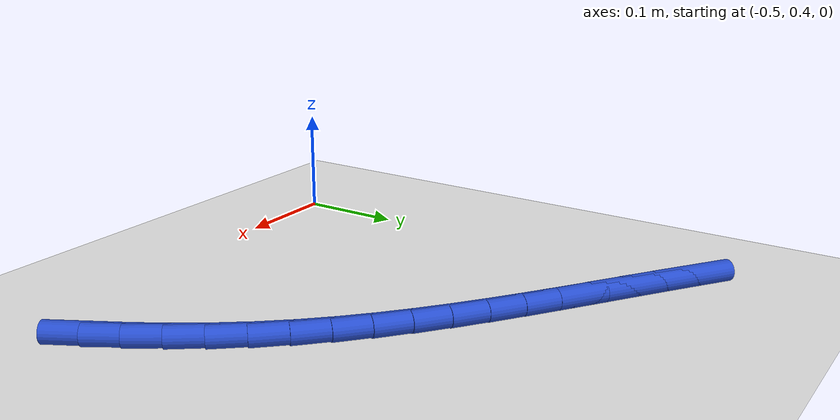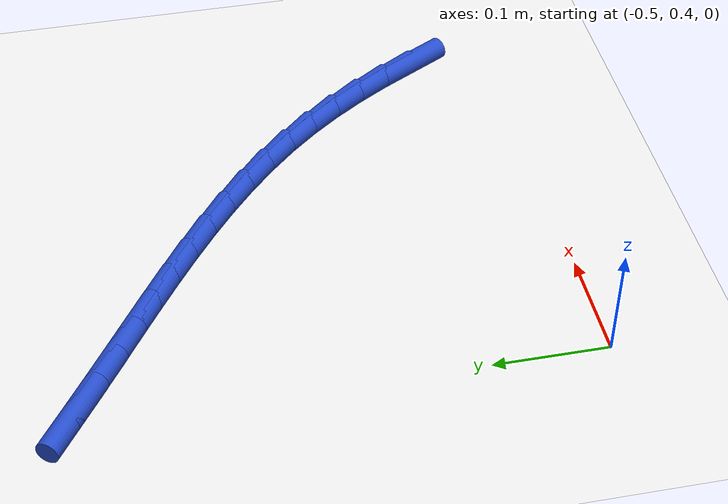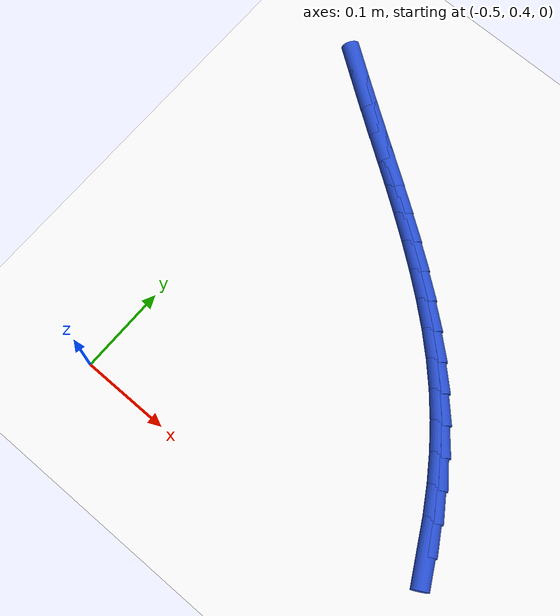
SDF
<sdf version="1.6">
 <world name="default">
  <model name="ground_plane">
   <static>1</static>
   <link name="link">
    <collision name="collision">
     <geometry><plane><normal>0 0 1</normal><size>100 100</size></plane></geometry>
     <surface><friction><ode><mu>100</mu><mu2>50</mu2></ode></friction></surface>
    </collision>
    <visual name="visual">
     <cast_shadows>0</cast_shadows>
     <geometry><plane><normal>0 0 1</normal><size>100 100</size></plane></geometry>
     <material>
      <script><uri>file://media/materials/scripts/gazebo.material</uri><name>Gazebo/WhiteGlow</name></script>
     </material>
    </visual>
   </link>
  </model>
  <model name="line">
   <link name="link_15">
    <pose>-0.11668721284144098 0.47833098790808176 0.01 0 1.57 -1.067563860604038</pose>
    <collision name="collision">
     <geometry><cylinder><radius>0.01</radius><length>0.08</length></cylinder></geometry>
    </collision>
    <visual name="visual">
     <material>
      <script><name>Gazebo/Blue</name><uri>file://media/materials/scripts/gazebo.material</uri></script>
     </material>
     <geometry><cylinder><radius>0.01</radius><length>0.08</length></cylinder></geometry>
    </visual>
   </link>
   <link name="link_16">
    <pose>-0.13262254188357628 0.5072776239264348 0.01 0 1.57 -1.0213081383237024</pose>
    <collision name="collision">
     <geometry><cylinder><radius>0.01</radius><length>0.08</length></cylinder></geometry>
    </collision>
    <visual name="visual">
     <material>
      <script><name>Gazebo/Blue</name><uri>file://media/materials/scripts/gazebo.material</uri></script>
     </material>
     <geometry><cylinder><radius>0.01</radius><length>0.08</length></cylinder></geometry>
    </visual>
   </link>
   <link name="link_17">
    <pose>-0.14980380530713783 0.5353331902429186 0.01 0 1.57 -0.9713191868171644</pose>
    <collision name="collision">
     <geometry><cylinder><radius>0.01</radius><length>0.08</length></cylinder></geometry>
    </collision>
    <visual name="visual">
     <material>
      <script><name>Gazebo/Blue</name><uri>file://media/materials/scripts/gazebo.material</uri></script>
     </material>
     <geometry><cylinder><radius>0.01</radius><length>0.08</length></cylinder></geometry>
    </visual>
   </link>
   <link name="link_18">
    <pose>-0.1682887340639343 0.5623828737771742 0.01 0 1.57 -0.9175050932684928</pose>
    <collision name="collision">
     <geometry><cylinder><radius>0.01</radius><length>0.08</length></cylinder></geometry>
    </collision>
    <visual name="visual">
     <material>
      <script><name>Gazebo/Blue</name><uri>file://media/materials/scripts/gazebo.material</uri></script>
     </material>
     <geometry><cylinder><radius>0.01</radius><length>0.08</length></cylinder></geometry>
    </visual>
   </link>
   <link name="link_19">
    <pose>-0.1881350591057746 0.5883118614488434 0.01 0 1.57 -0.860006029595551</pose>
    <collision name="collision">
     <geometry><cylinder><radius>0.01</radius><length>0.08</length></cylinder></geometry>
    </collision>
    <visual name="visual">
     <material>
      <script><name>Gazebo/Blue</name><uri>file://media/materials/scripts/gazebo.material</uri></script>
     </material>
     <geometry><cylinder><radius>0.01</radius><length>0.08</length></cylinder></geometry>
    </visual>
   </link>
   <link name="link_20">
    <pose>-0.20939704883201216 0.6130091513345207 0.01 0 1.57 -0.803554375496242</pose>
    <collision name="collision">
     <geometry><cylinder><radius>0.01</radius><length>0.08</length></cylinder></geometry>
    </collision>
    <visual name="visual">
     <material>
      <script><name>Gazebo/Blue</name><uri>file://media/materials/scripts/gazebo.material</uri></script>
     </material>
     <geometry><cylinder><radius>0.01</radius><length>0.08</length></cylinder></geometry>
    </visual>
   </link>
   <link name="link_21">
    <pose>-0.23202692477752082 0.6364760622978917 0.01 0 1.57 -0.7536377840492777</pose>
    <collision name="collision">
     <geometry><cylinder><radius>0.01</radius><length>0.08</length></cylinder></geometry>
    </collision>
    <visual name="visual">
     <material>
      <script><name>Gazebo/Blue</name><uri>file://media/materials/scripts/gazebo.material</uri></script>
     </material>
     <geometry><cylinder><radius>0.01</radius><length>0.08</length></cylinder></geometry>
    </visual>
   </link>
   <link name="link_22">
    <pose>-0.25586060120928383 0.6588419301088015 0.01 0 1.57 -0.7106281662134715</pose>
    <collision name="collision">
     <geometry><cylinder><radius>0.01</radius><length>0.08</length></cylinder></geometry>
    </collision>
    <visual name="visual">
     <material>
      <script><name>Gazebo/Blue</name><uri>file://media/materials/scripts/gazebo.material</uri></script>
     </material>
     <geometry><cylinder><radius>0.01</radius><length>0.08</length></cylinder></geometry>
    </visual>
   </link>
   <link name="link_23">
    <pose>-0.2807276624553696 0.6802430577646006 0.01 0 1.57 -0.6744722932389033</pose>
    <collision name="collision">
     <geometry><cylinder><radius>0.01</radius><length>0.08</length></cylinder></geometry>
    </collision>
    <visual name="visual">
     <material>
      <script><name>Gazebo/Blue</name><uri>file://media/materials/scripts/gazebo.material</uri></script>
     </material>
     <geometry><cylinder><radius>0.01</radius><length>0.08</length></cylinder></geometry>
    </visual>
   </link>
   <link name="link_24">
    <pose>-0.306457692843847 0.7008157482626399 0.01 0 1.57 -0.6450402758384357</pose>
    <collision name="collision">
     <geometry><cylinder><radius>0.01</radius><length>0.08</length></cylinder></geometry>
    </collision>
    <visual name="visual">
     <material>
      <script><name>Gazebo/Blue</name><uri>file://media/materials/scripts/gazebo.material</uri></script>
     </material>
     <geometry><cylinder><radius>0.01</radius><length>0.08</length></cylinder></geometry>
    </visual>
   </link>
   <link name="link_25">
    <pose>-0.3328802767027845 0.7206963046002702 0.01 0 1.57 -0.6221758415268458</pose>
    <collision name="collision">
     <geometry><cylinder><radius>0.01</radius><length>0.08</length></cylinder></geometry>
    </collision>
    <visual name="visual">
     <material>
      <script><name>Gazebo/Blue</name><uri>file://media/materials/scripts/gazebo.material</uri></script>
     </material>
     <geometry><cylinder><radius>0.01</radius><length>0.08</length></cylinder></geometry>
    </visual>
   </link>
   <link name="link_26">
    <pose>-0.35982499836025095 0.740021029774843 0.01 0 1.57 -0.6057343149471346</pose>
    <collision name="collision">
     <geometry><cylinder><radius>0.01</radius><length>0.08</length></cylinder></geometry>
    </collision>
    <visual name="visual">
     <material>
      <script><name>Gazebo/Blue</name><uri>file://media/materials/scripts/gazebo.material</uri></script>
     </material>
     <geometry><cylinder><radius>0.01</radius><length>0.08</length></cylinder></geometry>
    </visual>
   </link>
   <link name="link_27">
    <pose>-0.38712144214431476 0.7589262267837081 0.01 0 1.57 -0.5956097127152926</pose>
    <collision name="collision">
     <geometry><cylinder><radius>0.01</radius><length>0.08</length></cylinder></geometry>
    </collision>
    <visual name="visual">
     <material>
      <script><name>Gazebo/Blue</name><uri>file://media/materials/scripts/gazebo.material</uri></script>
     </material>
     <geometry><cylinder><radius>0.01</radius><length>0.08</length></cylinder></geometry>
    </visual>
   </link>
   <link name="link_28">
    <pose>-0.41459919238304455 0.777548198624217 0.01 0 1.57 -0.5917530622940216</pose>
    <collision name="collision">
     <geometry><cylinder><radius>0.01</radius><length>0.08</length></cylinder></geometry>
    </collision>
    <visual name="visual">
     <material>
      <script><name>Gazebo/Blue</name><uri>file://media/materials/scripts/gazebo.material</uri></script>
     </material>
     <geometry><cylinder><radius>0.01</radius><length>0.08</length></cylinder></geometry>
    </visual>
   </link>
   <link name="link_29">
    <pose>-0.4420878334045092 0.7960232482937206 0.01 0 1.57 -0.5941732780528943</pose>
    <collision name="collision">
     <geometry><cylinder><radius>0.01</radius><length>0.08</length></cylinder></geometry>
    </collision>
    <visual name="visual">
     <material>
      <script><name>Gazebo/Blue</name><uri>file://media/materials/scripts/gazebo.material</uri></script>
     </material>
     <geometry><cylinder><radius>0.01</radius><length>0.08</length></cylinder></geometry>
    </visual>
   </link>
   <link name="link_30">
    <pose>-0.46941726918743887 0.8144874741246306 0.01 0 1.57 -0.6005097237125809</pose>
    <collision name="collision">
     <geometry><cylinder><radius>0.01</radius><length>0.08</length></cylinder></geometry>
    </collision>
    <visual name="visual">
     <material>
      <script><name>Gazebo/Blue</name><uri>file://media/materials/scripts/gazebo.material</uri></script>
     </material>
     <geometry><cylinder><radius>0.01</radius><length>0.08</length></cylinder></geometry>
    </visual>
   </link>
   <link name="link_31">
    <pose>-0.4964909821055878 0.8330298639017709 0.01 0 1.57 -0.6052269998892688</pose>
    <collision name="collision">
     <geometry><cylinder><radius>0.01</radius><length>0.08</length></cylinder></geometry>
    </collision>
    <visual name="visual">
     <material>
      <script><name>Gazebo/Blue</name><uri>file://media/materials/scripts/gazebo.material</uri></script>
     </material>
     <geometry><cylinder><radius>0.01</radius><length>0.08</length></cylinder></geometry>
    </visual>
   </link>
  </model>
 </world>
</sdf>
